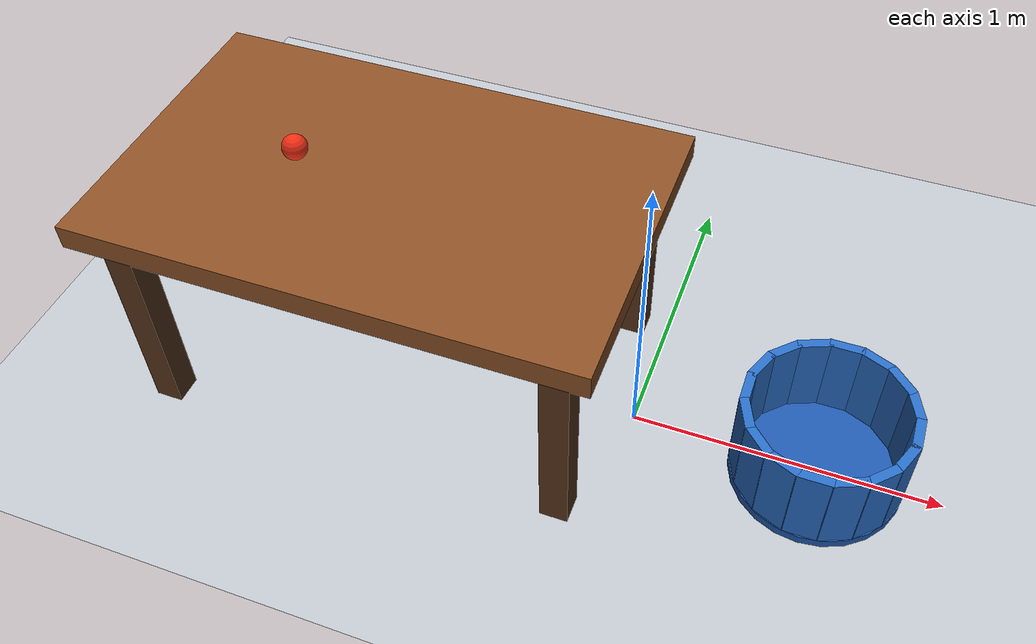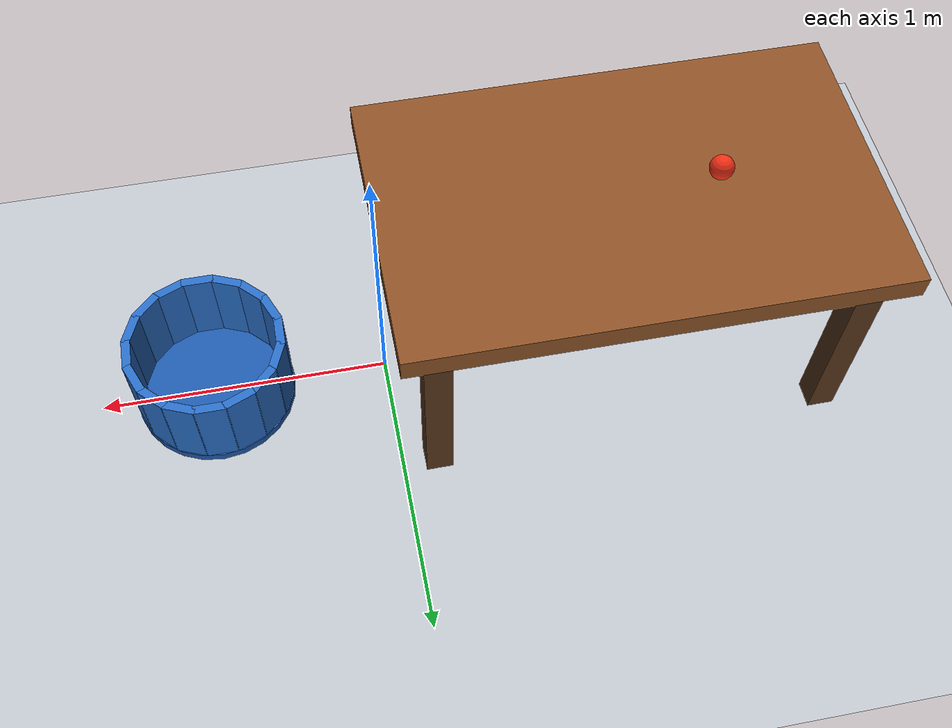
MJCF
<mujoco model="ball_rolls_into_bucket">
  <compiler angle="degree"/>
  <option timestep="0.002" gravity="0 0 -9.81" integrator="implicitfast"/>
  <statistic center="-0.35 0 0.45" extent="2.0"/>

  <visual>
    <global azimuth="135" elevation="-25"/>
  </visual>

  <worldbody>
    <light name="overhead" pos="0 -1 4" dir="0 0 -1" diffuse="0.9 0.9 0.9"/>
    <geom name="floor" type="plane" pos="0 0 0" size="4 4 0.1" friction="0.8 0.005 0.0001" rgba="0.75 0.77 0.80 1"/>

    <!-- Table surface: z = 0.80 m. Its departure edge is x = 0. -->
    <body name="table" pos="0 0 0">
      <geom name="table_top" type="box" pos="-0.8 0 0.76" size="0.8 0.5 0.04" condim="3" friction="0.8 0.005 0.0001" solref="0.01 1" rgba="0.55 0.32 0.15 1"/>
      <geom name="table_leg_back_left" type="box" pos="-1.48 -0.4 0.36" size="0.045 0.045 0.36" rgba="0.35 0.21 0.11 1"/>
      <geom name="table_leg_back_right" type="box" pos="-1.48 0.4 0.36" size="0.045 0.045 0.36" rgba="0.35 0.21 0.11 1"/>
      <geom name="table_leg_front_left" type="box" pos="-0.12 -0.4 0.36" size="0.045 0.045 0.36" rgba="0.35 0.21 0.11 1"/>
      <geom name="table_leg_front_right" type="box" pos="-0.12 0.4 0.36" size="0.045 0.045 0.36" rgba="0.35 0.21 0.11 1"/>
    </body>

    <!-- Open bucket: centre x = 0.60 m, bottom on the floor, rim z = 0.32 m. -->
    <body name="bucket" pos="0.6 0 0">
      <geom name="bucket_base" type="cylinder" pos="0 0 0.015" size="0.276 0.015" condim="6" friction="0.9 0.01 0.008" solref="0.01 1" rgba="0.12 0.35 0.68 1"/>
      <geom name="bucket_wall_00" type="box" pos="0.255 0 0.175" size="0.015 0.055 0.145" euler="0 0 0" condim="6" friction="0.9 0.01 0.008" solref="0.01 1" rgba="0.16 0.43 0.78 1"/>
      <geom name="bucket_wall_01" type="box" pos="0.235589 0.097584 0.175" size="0.015 0.055 0.145" euler="0 0 22.5" condim="6" friction="0.9 0.01 0.008" solref="0.01 1" rgba="0.16 0.43 0.78 1"/>
      <geom name="bucket_wall_02" type="box" pos="0.180312 0.180312 0.175" size="0.015 0.055 0.145" euler="0 0 45" condim="6" friction="0.9 0.01 0.008" solref="0.01 1" rgba="0.16 0.43 0.78 1"/>
      <geom name="bucket_wall_03" type="box" pos="0.097584 0.235589 0.175" size="0.015 0.055 0.145" euler="0 0 67.5" condim="6" friction="0.9 0.01 0.008" solref="0.01 1" rgba="0.16 0.43 0.78 1"/>
      <geom name="bucket_wall_04" type="box" pos="0 0.255 0.175" size="0.015 0.055 0.145" euler="0 0 90" condim="6" friction="0.9 0.01 0.008" solref="0.01 1" rgba="0.16 0.43 0.78 1"/>
      <geom name="bucket_wall_05" type="box" pos="-0.097584 0.235589 0.175" size="0.015 0.055 0.145" euler="0 0 112.5" condim="6" friction="0.9 0.01 0.008" solref="0.01 1" rgba="0.16 0.43 0.78 1"/>
      <geom name="bucket_wall_06" type="box" pos="-0.180312 0.180312 0.175" size="0.015 0.055 0.145" euler="0 0 135" condim="6" friction="0.9 0.01 0.008" solref="0.01 1" rgba="0.16 0.43 0.78 1"/>
      <geom name="bucket_wall_07" type="box" pos="-0.235589 0.097584 0.175" size="0.015 0.055 0.145" euler="0 0 157.5" condim="6" friction="0.9 0.01 0.008" solref="0.01 1" rgba="0.16 0.43 0.78 1"/>
      <geom name="bucket_wall_08" type="box" pos="-0.255 0 0.175" size="0.015 0.055 0.145" euler="0 0 180" condim="6" friction="0.9 0.01 0.008" solref="0.01 1" rgba="0.16 0.43 0.78 1"/>
      <geom name="bucket_wall_09" type="box" pos="-0.235589 -0.097584 0.175" size="0.015 0.055 0.145" euler="0 0 202.5" condim="6" friction="0.9 0.01 0.008" solref="0.01 1" rgba="0.16 0.43 0.78 1"/>
      <geom name="bucket_wall_10" type="box" pos="-0.180312 -0.180312 0.175" size="0.015 0.055 0.145" euler="0 0 225" condim="6" friction="0.9 0.01 0.008" solref="0.01 1" rgba="0.16 0.43 0.78 1"/>
      <geom name="bucket_wall_11" type="box" pos="-0.097584 -0.235589 0.175" size="0.015 0.055 0.145" euler="0 0 247.5" condim="6" friction="0.9 0.01 0.008" solref="0.01 1" rgba="0.16 0.43 0.78 1"/>
      <geom name="bucket_wall_12" type="box" pos="0 -0.255 0.175" size="0.015 0.055 0.145" euler="0 0 270" condim="6" friction="0.9 0.01 0.008" solref="0.01 1" rgba="0.16 0.43 0.78 1"/>
      <geom name="bucket_wall_13" type="box" pos="0.097584 -0.235589 0.175" size="0.015 0.055 0.145" euler="0 0 292.5" condim="6" friction="0.9 0.01 0.008" solref="0.01 1" rgba="0.16 0.43 0.78 1"/>
      <geom name="bucket_wall_14" type="box" pos="0.180312 -0.180312 0.175" size="0.015 0.055 0.145" euler="0 0 315" condim="6" friction="0.9 0.01 0.008" solref="0.01 1" rgba="0.16 0.43 0.78 1"/>
      <geom name="bucket_wall_15" type="box" pos="0.235589 -0.097584 0.175" size="0.015 0.055 0.145" euler="0 0 337.5" condim="6" friction="0.9 0.01 0.008" solref="0.01 1" rgba="0.16 0.43 0.78 1"/>
    </body>

    <body name="ball" pos="-1.1 0 0.84">
      <freejoint name="ball_free"/>
      <geom name="ball" type="sphere" size="0.04" mass="0.08" condim="3" friction="0.8 0.005 0.0001" solref="0.01 1" rgba="0.95 0.18 0.08 1"/>
    </body>
  </worldbody>

  <!-- Rolling toward +x: vx = radius * omega_y = 1.8 m/s. -->
  <keyframe>
    <key name="start" qpos="-1.1 0 0.84 1 0 0 0" qvel="1.8 0 0 0 45 0"/>
  </keyframe>
</mujoco>
